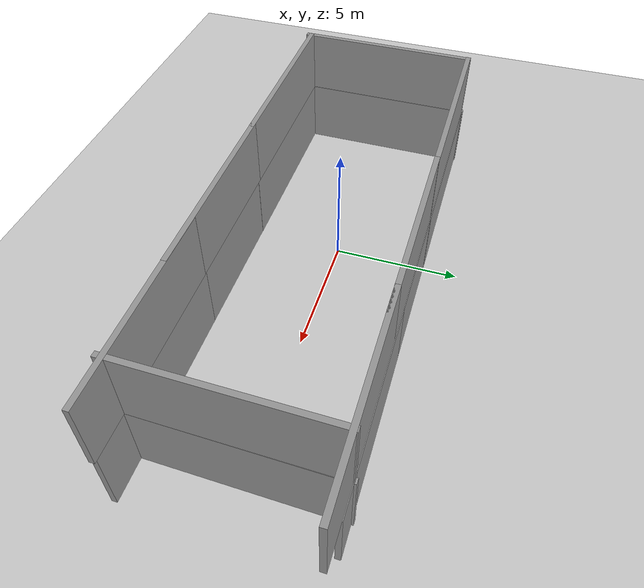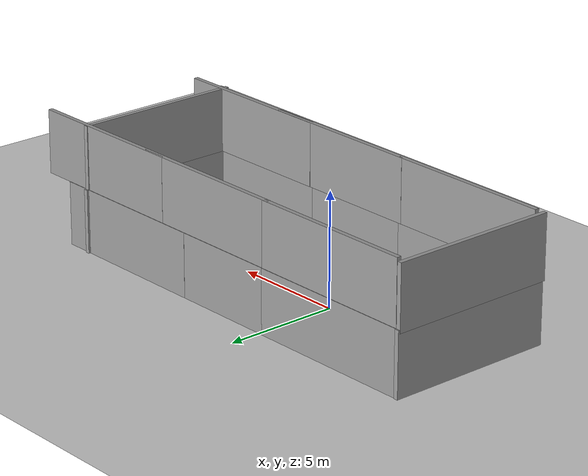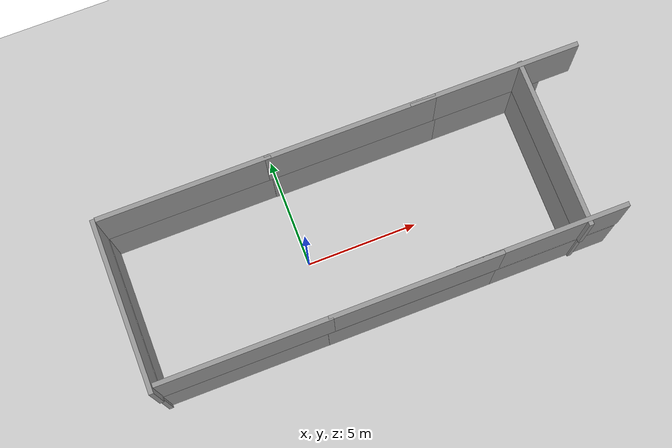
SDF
<sdf version="1.6">
 <world name="default">
  <model name="ground_plane">
   <static>1</static>
   <link name="link">
    <collision name="collision">
     <geometry><plane><normal>0 0 1</normal><size>100 100</size></plane></geometry>
     <surface>
      <contact><collide_bitmask>65535</collide_bitmask></contact>
      <friction><ode><mu>100</mu><mu2>50</mu2></ode></friction>
     </surface>
    </collision>
    <visual name="visual">
     <cast_shadows>0</cast_shadows>
     <geometry><plane><normal>0 0 1</normal><size>100 100</size></plane></geometry>
     <material>
      <script><uri>file://media/materials/scripts/gazebo.material</uri><name>Gazebo/Grey</name></script>
     </material>
    </visual>
   </link>
  </model>
  <light name="sun" type="directional">
   <pose>0 0 10 0 -0 0</pose>
   <diffuse>0.8 0.8 0.8 1</diffuse>
   <specular>0.2 0.2 0.2 1</specular>
   <attenuation>
    <range>1000</range>
    <constant>0.9</constant>
    <linear>0.01</linear>
    <quadratic>0.001</quadratic>
   </attenuation>
   <direction>-0.5 0.1 -0.9</direction>
  </light>
  <plugin name="ros_interface_plugin" filename="librotors_gazebo_ros_interface_plugin.so"/>
  <spherical_coordinates>
   <surface_model>EARTH_WGS84</surface_model>
   <latitude_deg>47.3667</latitude_deg>
   <longitude_deg>8.55</longitude_deg>
   <elevation>500</elevation>
   <heading_deg>0</heading_deg>
  </spherical_coordinates>
  <physics name="default_physics" default="0" type="ode">
   <ode>
    <solver>
     <type>quick</type>
     <iters>1000</iters>
     <sor>1.3</sor>
     <use_dynamic_moi_rescaling>0</use_dynamic_moi_rescaling>
    </solver>
    <constraints>
     <cfm>0</cfm>
     <erp>0.2</erp>
     <contact_max_correcting_vel>100</contact_max_correcting_vel>
     <contact_surface_layer>0.001</contact_surface_layer>
    </constraints>
   </ode>
   <max_step_size>0.01</max_step_size>
   <real_time_factor>1</real_time_factor>
   <real_time_update_rate>100</real_time_update_rate>
  </physics>
  <gravity>0 0 -9.8</gravity>
  <magnetic_field>6e-06 2.3e-05 -4.2e-05</magnetic_field>
  <atmosphere type="adiabatic"/>
  <scene><ambient>0.4 0.4 0.4 1</ambient><background>0.7 0.7 0.7 1</background><shadows>1</shadows></scene>
  <audio><device>default</device></audio>
  <model name="grey_wall">
   <static>1</static>
   <link name="link">
    <pose>0 0 1.4 0 -0 0</pose>
    <collision name="collision"><geometry><box><size>7.5 0.2 2.8</size></box></geometry></collision>
    <visual name="visual">
     <cast_shadows>0</cast_shadows>
     <geometry><box><size>7.5 0.2 2.8</size></box></geometry>
     <material>
      <script>
       <uri>model://grey_wall/materials/scripts</uri>
       <uri>model://grey_wall/materials/textures</uri>
       <name>vrc/grey_wall</name>
      </script>
     </material>
    </visual>
   </link>
   <pose>3.4613 3.54063 0 0 -0 0</pose>
  </model>
  <model name="grey_wall_0">
   <static>1</static>
   <link name="link">
    <pose>0 0 1.4 0 -0 0</pose>
    <collision name="collision"><geometry><box><size>7.5 0.2 2.8</size></box></geometry></collision>
    <visual name="visual">
     <cast_shadows>0</cast_shadows>
     <geometry><box><size>7.5 0.2 2.8</size></box></geometry>
     <material>
      <script>
       <uri>model://grey_wall/materials/scripts</uri>
       <uri>model://grey_wall/materials/textures</uri>
       <name>vrc/grey_wall</name>
      </script>
     </material>
    </visual>
   </link>
   <pose>3.29869 -3.59697 0 0 -0 0</pose>
  </model>
  <model name="grey_wall_1">
   <static>1</static>
   <link name="link">
    <pose>0 0 1.4 0 -0 0</pose>
    <collision name="collision"><geometry><box><size>7.5 0.2 2.8</size></box></geometry></collision>
    <visual name="visual">
     <cast_shadows>0</cast_shadows>
     <geometry><box><size>7.5 0.2 2.8</size></box></geometry>
     <material>
      <script>
       <uri>model://grey_wall/materials/scripts</uri>
       <uri>model://grey_wall/materials/textures</uri>
       <name>vrc/grey_wall</name>
      </script>
     </material>
    </visual>
   </link>
   <pose>10.8825 -0.026084 0 0 -0 1.56544</pose>
  </model>
  <model name="grey_wall_2">
   <static>1</static>
   <link name="link">
    <pose>0 0 1.4 0 -0 0</pose>
    <collision name="collision"><geometry><box><size>7.5 0.2 2.8</size></box></geometry></collision>
    <visual name="visual">
     <cast_shadows>0</cast_shadows>
     <geometry><box><size>7.5 0.2 2.8</size></box></geometry>
     <material>
      <script>
       <uri>model://grey_wall/materials/scripts</uri>
       <uri>model://grey_wall/materials/textures</uri>
       <name>vrc/grey_wall</name>
      </script>
     </material>
    </visual>
   </link>
   <pose>-3.88319 3.55252 0 0 -0 0</pose>
  </model>
  <model name="grey_wall_3">
   <static>1</static>
   <link name="link">
    <pose>0 0 1.4 0 -0 0</pose>
    <collision name="collision"><geometry><box><size>7.5 0.2 2.8</size></box></geometry></collision>
    <visual name="visual">
     <cast_shadows>0</cast_shadows>
     <geometry><box><size>7.5 0.2 2.8</size></box></geometry>
     <material>
      <script>
       <uri>model://grey_wall/materials/scripts</uri>
       <uri>model://grey_wall/materials/textures</uri>
       <name>vrc/grey_wall</name>
      </script>
     </material>
    </visual>
   </link>
   <pose>-3.91643 -3.59256 0 0 -0 0</pose>
  </model>
  <model name="grey_wall_4">
   <static>1</static>
   <link name="link">
    <pose>0 0 1.4 0 -0 0</pose>
    <collision name="collision"><geometry><box><size>7.5 0.2 2.8</size></box></geometry></collision>
    <visual name="visual">
     <cast_shadows>0</cast_shadows>
     <geometry><box><size>7.5 0.2 2.8</size></box></geometry>
     <material>
      <script>
       <uri>model://grey_wall/materials/scripts</uri>
       <uri>model://grey_wall/materials/textures</uri>
       <name>vrc/grey_wall</name>
      </script>
     </material>
    </visual>
   </link>
   <pose>-7.74573 -0.06283 0 0 -0 1.56849</pose>
  </model>
  <model name="grey_wall_5">
   <static>1</static>
   <link name="link">
    <pose>0 0 1.4 0 -0 0</pose>
    <collision name="collision"><geometry><box><size>7.5 0.2 2.8</size></box></geometry></collision>
    <visual name="visual">
     <cast_shadows>0</cast_shadows>
     <geometry><box><size>7.5 0.2 2.8</size></box></geometry>
     <material>
      <script>
       <uri>model://grey_wall/materials/scripts</uri>
       <uri>model://grey_wall/materials/textures</uri>
       <name>vrc/grey_wall</name>
      </script>
     </material>
    </visual>
   </link>
   <pose>-3.87798 -3.58737 2.79494 0 -0 0</pose>
  </model>
  <model name="grey_wall_5_clone">
   <static>1</static>
   <link name="link">
    <pose>0 0 1.4 0 -0 0</pose>
    <collision name="collision"><geometry><box><size>7.5 0.2 2.8</size></box></geometry></collision>
    <visual name="visual">
     <cast_shadows>0</cast_shadows>
     <geometry><box><size>7.5 0.2 2.8</size></box></geometry>
     <material>
      <script>
       <uri>model://grey_wall/materials/scripts</uri>
       <uri>model://grey_wall/materials/textures</uri>
       <name>vrc/grey_wall</name>
      </script>
     </material>
    </visual>
   </link>
   <pose>3.4361 -3.58348 2.79494 0 -0 0</pose>
  </model>
  <model name="grey_wall_5_clone_0">
   <static>1</static>
   <link name="link">
    <pose>0 0 1.4 0 -0 0</pose>
    <collision name="collision"><geometry><box><size>7.5 0.2 2.8</size></box></geometry></collision>
    <visual name="visual">
     <cast_shadows>0</cast_shadows>
     <geometry><box><size>7.5 0.2 2.8</size></box></geometry>
     <material>
      <script>
       <uri>model://grey_wall/materials/scripts</uri>
       <uri>model://grey_wall/materials/textures</uri>
       <name>vrc/grey_wall</name>
      </script>
     </material>
    </visual>
   </link>
   <pose>-3.89204 3.52531 2.79494 0 -0 0</pose>
  </model>
  <model name="grey_wall_5_clone_1">
   <static>1</static>
   <link name="link">
    <pose>0 0 1.4 0 -0 0</pose>
    <collision name="collision"><geometry><box><size>7.5 0.2 2.8</size></box></geometry></collision>
    <visual name="visual">
     <cast_shadows>0</cast_shadows>
     <geometry><box><size>7.5 0.2 2.8</size></box></geometry>
     <material>
      <script>
       <uri>model://grey_wall/materials/scripts</uri>
       <uri>model://grey_wall/materials/textures</uri>
       <name>vrc/grey_wall</name>
      </script>
     </material>
    </visual>
   </link>
   <pose>3.33771 3.515 2.79494 0 -0 0</pose>
  </model>
  <model name="grey_wall_4_clone">
   <static>1</static>
   <link name="link">
    <pose>0 0 1.4 0 -0 0</pose>
    <collision name="collision"><geometry><box><size>7.5 0.2 2.8</size></box></geometry></collision>
    <visual name="visual">
     <cast_shadows>0</cast_shadows>
     <geometry><box><size>7.5 0.2 2.8</size></box></geometry>
     <material>
      <script>
       <uri>model://grey_wall/materials/scripts</uri>
       <uri>model://grey_wall/materials/textures</uri>
       <name>vrc/grey_wall</name>
      </script>
     </material>
    </visual>
   </link>
   <pose>-7.77269 -0.119942 2.6582 0 -0 1.56849</pose>
  </model>
  <model name="grey_wall_4_clone_clone">
   <static>1</static>
   <link name="link">
    <pose>0 0 1.4 0 -0 0</pose>
    <collision name="collision"><geometry><box><size>7.5 0.2 2.8</size></box></geometry></collision>
    <visual name="visual">
     <cast_shadows>0</cast_shadows>
     <geometry><box><size>7.5 0.2 2.8</size></box></geometry>
     <material>
      <script>
       <uri>model://grey_wall/materials/scripts</uri>
       <uri>model://grey_wall/materials/textures</uri>
       <name>vrc/grey_wall</name>
      </script>
     </material>
    </visual>
   </link>
   <pose>10.872 -0.094904 2.78457 0 -0 1.56849</pose>
  </model>
  <model name="grey_wall_clone">
   <static>1</static>
   <link name="link">
    <pose>0 0 1.4 0 -0 0</pose>
    <collision name="collision"><geometry><box><size>7.5 0.2 2.8</size></box></geometry></collision>
    <visual name="visual">
     <cast_shadows>0</cast_shadows>
     <geometry><box><size>7.5 0.2 2.8</size></box></geometry>
     <material>
      <script>
       <uri>model://grey_wall/materials/scripts</uri>
       <uri>model://grey_wall/materials/textures</uri>
       <name>vrc/grey_wall</name>
      </script>
     </material>
    </visual>
   </link>
   <pose>8.34495 3.54356 0 0 -0 0</pose>
  </model>
  <model name="grey_wall_5_clone_1_clone">
   <static>1</static>
   <link name="link">
    <pose>0 0 1.4 0 -0 0</pose>
    <collision name="collision"><geometry><box><size>7.5 0.2 2.8</size></box></geometry></collision>
    <visual name="visual">
     <cast_shadows>0</cast_shadows>
     <geometry><box><size>7.5 0.2 2.8</size></box></geometry>
     <material>
      <script>
       <uri>model://grey_wall/materials/scripts</uri>
       <uri>model://grey_wall/materials/textures</uri>
       <name>vrc/grey_wall</name>
      </script>
     </material>
    </visual>
   </link>
   <pose>9.7124 3.51644 2.79494 0 -0 0</pose>
  </model>
  <model name="grey_wall_0_clone">
   <static>1</static>
   <link name="link">
    <pose>0 0 1.4 0 -0 0</pose>
    <collision name="collision"><geometry><box><size>7.5 0.2 2.8</size></box></geometry></collision>
    <visual name="visual">
     <cast_shadows>0</cast_shadows>
     <geometry><box><size>7.5 0.2 2.8</size></box></geometry>
     <material>
      <script>
       <uri>model://grey_wall/materials/scripts</uri>
       <uri>model://grey_wall/materials/textures</uri>
       <name>vrc/grey_wall</name>
      </script>
     </material>
    </visual>
   </link>
   <pose>8.76477 -3.59604 0 0 -0 0</pose>
  </model>
  <model name="grey_wall_5_clone_clone">
   <static>1</static>
   <link name="link">
    <pose>0 0 1.4 0 -0 0</pose>
    <collision name="collision"><geometry><box><size>7.5 0.2 2.8</size></box></geometry></collision>
    <visual name="visual">
     <cast_shadows>0</cast_shadows>
     <geometry><box><size>7.5 0.2 2.8</size></box></geometry>
     <material>
      <script>
       <uri>model://grey_wall/materials/scripts</uri>
       <uri>model://grey_wall/materials/textures</uri>
       <name>vrc/grey_wall</name>
      </script>
     </material>
    </visual>
   </link>
   <pose>8.87423 -3.57153 2.79494 0 -0 0</pose>
  </model>
 </world>
</sdf>
